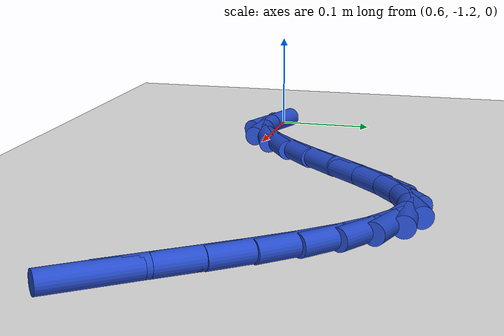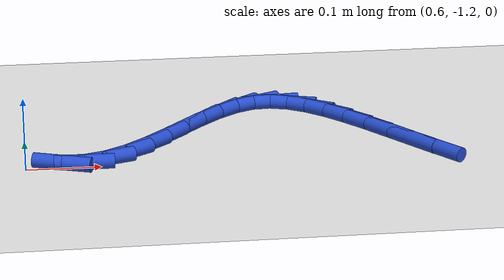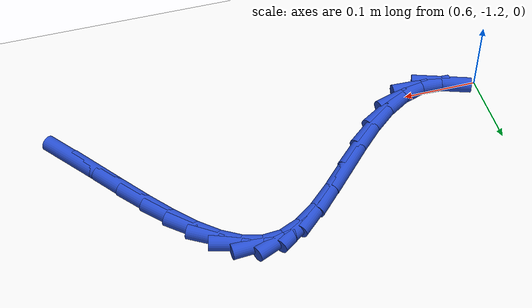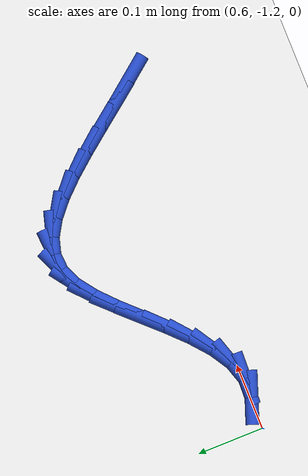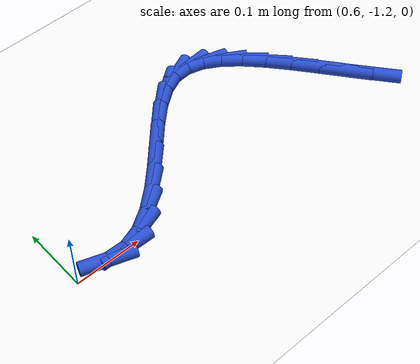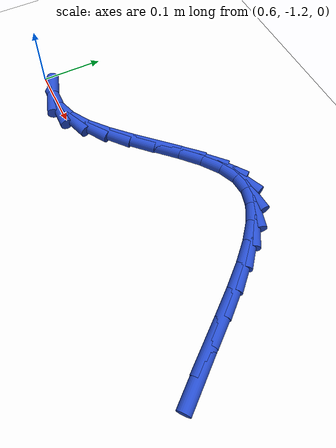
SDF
<sdf version="1.6">
 <world name="default">
  <model name="ground_plane">
   <static>1</static>
   <link name="link">
    <collision name="collision">
     <geometry><plane><normal>0 0 1</normal><size>100 100</size></plane></geometry>
     <surface><friction><ode><mu>100</mu><mu2>50</mu2></ode></friction></surface>
    </collision>
    <visual name="visual">
     <cast_shadows>0</cast_shadows>
     <geometry><plane><normal>0 0 1</normal><size>100 100</size></plane></geometry>
     <material>
      <script><uri>file://media/materials/scripts/gazebo.material</uri><name>Gazebo/WhiteGlow</name></script>
     </material>
    </visual>
   </link>
  </model>
  <model name="line">
   <link name="link_181">
    <pose>1.1499356012661697 -1.2086225007273603 0.01 0 1.57 -0.9006543000042294</pose>
    <collision name="collision">
     <geometry><cylinder><radius>0.01</radius><length>0.08</length></cylinder></geometry>
    </collision>
    <visual name="visual">
     <material>
      <script><name>Gazebo/Blue</name><uri>file://media/materials/scripts/gazebo.material</uri></script>
     </material>
     <geometry><cylinder><radius>0.01</radius><length>0.08</length></cylinder></geometry>
    </visual>
   </link>
   <link name="link_182">
    <pose>1.1234826646915144 -1.1752427848672662 0.01 0 1.57 -0.9147485466228567</pose>
    <collision name="collision">
     <geometry><cylinder><radius>0.01</radius><length>0.08</length></cylinder></geometry>
    </collision>
    <visual name="visual">
     <material>
      <script><name>Gazebo/Blue</name><uri>file://media/materials/scripts/gazebo.material</uri></script>
     </material>
     <geometry><cylinder><radius>0.01</radius><length>0.08</length></cylinder></geometry>
    </visual>
   </link>
   <link name="link_183">
    <pose>1.0977316885962576 -1.1417908985291203 0.01 0 1.57 -0.907409911436854</pose>
    <collision name="collision">
     <geometry><cylinder><radius>0.01</radius><length>0.08</length></cylinder></geometry>
    </collision>
    <visual name="visual">
     <material>
      <script><name>Gazebo/Blue</name><uri>file://media/materials/scripts/gazebo.material</uri></script>
     </material>
     <geometry><cylinder><radius>0.01</radius><length>0.08</length></cylinder></geometry>
    </visual>
   </link>
   <link name="link_184">
    <pose>1.0725253064469982 -1.1095389249500962 0.01 0 1.57 -0.8760083751805642</pose>
    <collision name="collision">
     <geometry><cylinder><radius>0.01</radius><length>0.08</length></cylinder></geometry>
    </collision>
    <visual name="visual">
     <material>
      <script><name>Gazebo/Blue</name><uri>file://media/materials/scripts/gazebo.material</uri></script>
     </material>
     <geometry><cylinder><radius>0.01</radius><length>0.08</length></cylinder></geometry>
    </visual>
   </link>
   <link name="link_185">
    <pose>1.0477061517103348 -1.0797589473673674 0.01 0 1.57 -0.8139651849708673</pose>
    <collision name="collision">
     <geometry><cylinder><radius>0.01</radius><length>0.08</length></cylinder></geometry>
    </collision>
    <visual name="visual">
     <material>
      <script><name>Gazebo/Blue</name><uri>file://media/materials/scripts/gazebo.material</uri></script>
     </material>
     <geometry><cylinder><radius>0.01</radius><length>0.08</length></cylinder></geometry>
    </visual>
   </link>
   <link name="link_186">
    <pose>1.0231168578528675 -1.0537230490181089 0.01 0 1.57 -0.7087517325307919</pose>
    <collision name="collision">
     <geometry><cylinder><radius>0.01</radius><length>0.08</length></cylinder></geometry>
    </collision>
    <visual name="visual">
     <material>
      <script><name>Gazebo/Blue</name><uri>file://media/materials/scripts/gazebo.material</uri></script>
     </material>
     <geometry><cylinder><radius>0.01</radius><length>0.08</length></cylinder></geometry>
    </visual>
   </link>
   <link name="link_187">
    <pose>0.9986000583411945 -1.0327033131394938 0.01 0 1.57 -0.5395369541652714</pose>
    <collision name="collision">
     <geometry><cylinder><radius>0.01</radius><length>0.08</length></cylinder></geometry>
    </collision>
    <visual name="visual">
     <material>
      <script><name>Gazebo/Blue</name><uri>file://media/materials/scripts/gazebo.material</uri></script>
     </material>
     <geometry><cylinder><radius>0.01</radius><length>0.08</length></cylinder></geometry>
    </visual>
   </link>
   <link name="link_188">
    <pose>0.9739983866419145 -1.017971822968696 0.01 0 1.57 -0.2810104548394386</pose>
    <collision name="collision">
     <geometry><cylinder><radius>0.01</radius><length>0.08</length></cylinder></geometry>
    </collision>
    <visual name="visual">
     <material>
      <script><name>Gazebo/Blue</name><uri>file://media/materials/scripts/gazebo.material</uri></script>
     </material>
     <geometry><cylinder><radius>0.01</radius><length>0.08</length></cylinder></geometry>
    </visual>
   </link>
   <link name="link_189">
    <pose>0.9491544762216273 -1.0108006617428895 0.01 0 1.57 0.06571426078438235</pose>
    <collision name="collision">
     <geometry><cylinder><radius>0.01</radius><length>0.08</length></cylinder></geometry>
    </collision>
    <visual name="visual">
     <material>
      <script><name>Gazebo/Blue</name><uri>file://media/materials/scripts/gazebo.material</uri></script>
     </material>
     <geometry><cylinder><radius>0.01</radius><length>0.08</length></cylinder></geometry>
    </visual>
   </link>
   <link name="link_190">
    <pose>0.923910960546931 -1.0124619126992473 0.01 0 1.57 0.4118078026766611</pose>
    <collision name="collision">
     <geometry><cylinder><radius>0.01</radius><length>0.08</length></cylinder></geometry>
    </collision>
    <visual name="visual">
     <material>
      <script><name>Gazebo/Blue</name><uri>file://media/materials/scripts/gazebo.material</uri></script>
     </material>
     <geometry><cylinder><radius>0.01</radius><length>0.08</length></cylinder></geometry>
    </visual>
   </link>
   <link name="link_191">
    <pose>0.8981391412202833 -1.0237185846784966 0.01 0 1.57 0.6310357554416977</pose>
    <collision name="collision">
     <geometry><cylinder><radius>0.01</radius><length>0.08</length></cylinder></geometry>
    </collision>
    <visual name="visual">
     <material>
      <script><name>Gazebo/Blue</name><uri>file://media/materials/scripts/gazebo.material</uri></script>
     </material>
     <geometry><cylinder><radius>0.01</radius><length>0.08</length></cylinder></geometry>
    </visual>
   </link>
   <link name="link_192">
    <pose>0.8718456066685731 -1.0429313308594241 0.01 0 1.57 0.7476706217523054</pose>
    <collision name="collision">
     <geometry><cylinder><radius>0.01</radius><length>0.08</length></cylinder></geometry>
    </collision>
    <visual name="visual">
     <material>
      <script><name>Gazebo/Blue</name><uri>file://media/materials/scripts/gazebo.material</uri></script>
     </material>
     <geometry><cylinder><radius>0.01</radius><length>0.08</length></cylinder></geometry>
    </visual>
   </link>
   <link name="link_193">
    <pose>0.8450768146835195 -1.0677528242111376 0.01 0 1.57 0.80141019413513</pose>
    <collision name="collision">
     <geometry><cylinder><radius>0.01</radius><length>0.08</length></cylinder></geometry>
    </collision>
    <visual name="visual">
     <material>
      <script><name>Gazebo/Blue</name><uri>file://media/materials/scripts/gazebo.material</uri></script>
     </material>
     <geometry><cylinder><radius>0.01</radius><length>0.08</length></cylinder></geometry>
    </visual>
   </link>
   <link name="link_194">
    <pose>0.8178792287117326 -1.0958356372859648 0.01 0 1.57 0.8104348790480873</pose>
    <collision name="collision">
     <geometry><cylinder><radius>0.01</radius><length>0.08</length></cylinder></geometry>
    </collision>
    <visual name="visual">
     <material>
      <script><name>Gazebo/Blue</name><uri>file://media/materials/scripts/gazebo.material</uri></script>
     </material>
     <geometry><cylinder><radius>0.01</radius><length>0.08</length></cylinder></geometry>
    </visual>
   </link>
   <link name="link_195">
    <pose>0.7902993121998237 -1.1248323426362323 0.01 0 1.57 0.7790424436990006</pose>
    <collision name="collision">
     <geometry><cylinder><radius>0.01</radius><length>0.08</length></cylinder></geometry>
    </collision>
    <visual name="visual">
     <material>
      <script><name>Gazebo/Blue</name><uri>file://media/materials/scripts/gazebo.material</uri></script>
     </material>
     <geometry><cylinder><radius>0.01</radius><length>0.08</length></cylinder></geometry>
    </visual>
   </link>
   <link name="link_196">
    <pose>0.7623835285944044 -1.152395512814268 0.01 0 1.57 0.7005246230174016</pose>
    <collision name="collision">
     <geometry><cylinder><radius>0.01</radius><length>0.08</length></cylinder></geometry>
    </collision>
    <visual name="visual">
     <material>
      <script><name>Gazebo/Blue</name><uri>file://media/materials/scripts/gazebo.material</uri></script>
     </material>
     <geometry><cylinder><radius>0.01</radius><length>0.08</length></cylinder></geometry>
    </visual>
   </link>
   <link name="link_197">
    <pose>0.7341783413420857 -1.1761777203723986 0.01 0 1.57 0.5554013392129648</pose>
    <collision name="collision">
     <geometry><cylinder><radius>0.01</radius><length>0.08</length></cylinder></geometry>
    </collision>
    <visual name="visual">
     <material>
      <script><name>Gazebo/Blue</name><uri>file://media/materials/scripts/gazebo.material</uri></script>
     </material>
     <geometry><cylinder><radius>0.01</radius><length>0.08</length></cylinder></geometry>
    </visual>
   </link>
   <link name="link_198">
    <pose>0.7057302138894789 -1.1938315378629512 0.01 0 1.57 0.31007425701699554</pose>
    <collision name="collision">
     <geometry><cylinder><radius>0.01</radius><length>0.08</length></cylinder></geometry>
    </collision>
    <visual name="visual">
     <material>
      <script><name>Gazebo/Blue</name><uri>file://media/materials/scripts/gazebo.material</uri></script>
     </material>
     <geometry><cylinder><radius>0.01</radius><length>0.08</length></cylinder></geometry>
    </visual>
   </link>
   <link name="link_199">
    <pose>0.6770856096831956 -1.203009537838253 0.01 0 1.57 -0.03466061793459305</pose>
    <collision name="collision">
     <geometry><cylinder><radius>0.01</radius><length>0.08</length></cylinder></geometry>
    </collision>
    <visual name="visual">
     <material>
      <script><name>Gazebo/Blue</name><uri>file://media/materials/scripts/gazebo.material</uri></script>
     </material>
     <geometry><cylinder><radius>0.01</radius><length>0.08</length></cylinder></geometry>
    </visual>
   </link>
   <link name="link_200">
    <pose>0.6483125327999267 -1.2020118456529563 0.01 0 1.57 -0.3419263961728035</pose>
    <collision name="collision">
     <geometry><cylinder><radius>0.01</radius><length>0.08</length></cylinder></geometry>
    </collision>
    <visual name="visual">
     <material>
      <script><name>Gazebo/Blue</name><uri>file://media/materials/scripts/gazebo.material</uri></script>
     </material>
     <geometry><cylinder><radius>0.01</radius><length>0.08</length></cylinder></geometry>
    </visual>
   </link>
  </model>
 </world>
</sdf>
